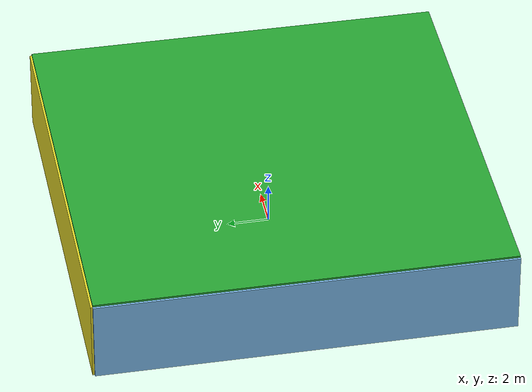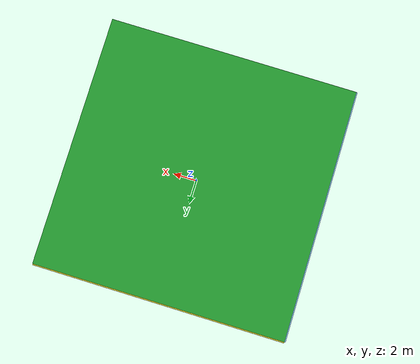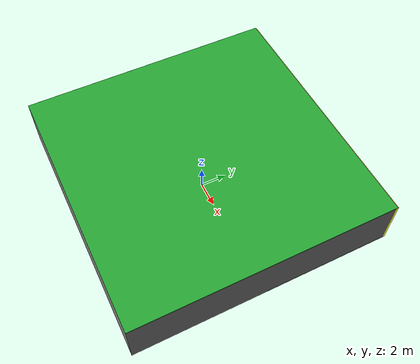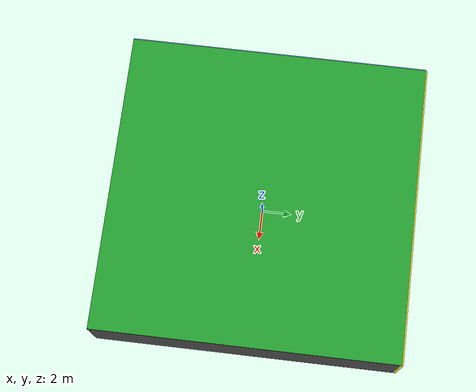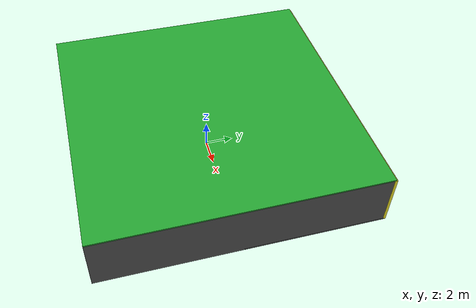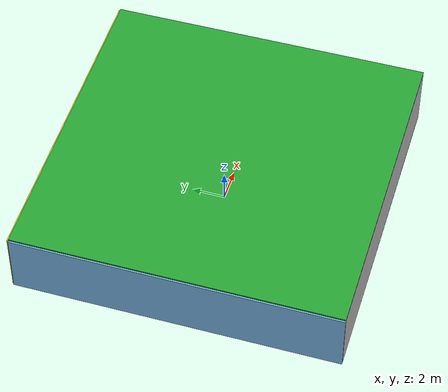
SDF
<sdf version="1.4">
 <world name="default">
  <physics type="ode">
   <max_step_size>0.001</max_step_size>
   <real_time_factor>1</real_time_factor>
   <real_time_update_rate>1000</real_time_update_rate>
   <gravity>0 0 -9.8</gravity>
  </physics>
  <scene><ambient>0.4 0.4 0.4 1</ambient><background>0.7 0.7 0.7 1</background><shadows>1</shadows></scene>
  <model name="Surrounding">
   <static>1</static>
   <link name="Ceiling">
    <collision name="Ceiling_Collision"><geometry><box><size>20 20 0.1</size></box></geometry></collision>
    <visual name="Ceiling_Visual">
     <geometry><box><size>20 20 0.1</size></box></geometry>
     <material>
      <script><uri>file://media/materials/scripts/gazebo.material</uri><name>Gazebo/GreenGlow</name></script>
     </material>
    </visual>
    <pose>0 0 4.05 0 0 0</pose>
   </link>
   <link name="Wall_South">
    <collision name="Wall_South_Collision">
     <geometry><box><size>20 0 4</size></box></geometry>
     <pose>0 0 2 0 -0 0</pose>
    </collision>
    <visual name="Wall_South_Visual">
     <pose>0 0 2 0 -0 0</pose>
     <geometry><box><size>20 0 4</size></box></geometry>
     <material>
      <script><uri>file://media/materials/scripts/gazebo.material</uri><name>Gazebo/JointAnchor</name></script>
     </material>
    </visual>
    <velocity_decay><linear>0</linear><angular>0</angular></velocity_decay>
    <pose>0 -10 0 0 -0 0</pose>
   </link>
   <link name="Wall_East">
    <collision name="Wall_21_Collision">
     <geometry><box><size>20 0 4</size></box></geometry>
     <pose>0 0 2 0 -0 0</pose>
    </collision>
    <visual name="Wall_21_Visual">
     <pose>0 0 2 0 -0 0</pose>
     <geometry><box><size>20 0 4</size></box></geometry>
     <material>
      <script><uri>file://media/materials/scripts/gazebo.material</uri><name>Gazebo/Road</name></script>
     </material>
    </visual>
    <velocity_decay><linear>0</linear><angular>0</angular></velocity_decay>
    <pose>10 0 0 0 -0 1.5708</pose>
   </link>
   <link name="Wall_North">
    <collision name="Wall_22_Collision">
     <geometry><box><size>20 0.2 4</size></box></geometry>
     <pose>0 0 2 0 -0 0</pose>
    </collision>
    <visual name="Wall_22_Visual">
     <pose>0 0 2 0 -0 0</pose>
     <geometry><box><size>20 0.2 4</size></box></geometry>
     <material>
      <script><uri>file://media/materials/scripts/gazebo.material</uri><name>Gazebo/YellowGlow</name></script>
     </material>
    </visual>
    <velocity_decay><linear>0</linear><angular>0</angular></velocity_decay>
    <pose>0 10 0 0 -0 0</pose>
   </link>
   <link name="Wall_West">
    <collision name="Wall_23_Collision">
     <geometry><box><size>20 0.2 4</size></box></geometry>
     <pose>0 0 2 0 -0 0</pose>
    </collision>
    <visual name="Wall_23_Visual">
     <pose>0 0 2 0 -0 0</pose>
     <geometry><box><size>20 0.2 4</size></box></geometry>
     <material>
      <script><uri>file://media/materials/scripts/gazebo.material</uri><name>Gazebo/SkyBlue</name></script>
     </material>
    </visual>
    <velocity_decay><linear>0</linear><angular>0</angular></velocity_decay>
    <pose>-10 0 0 0 0 -1.5708</pose>
   </link>
   <link name="Ground_link">
    <collision name="collision">
     <pose>0 0 .05 0 -0 0</pose>
     <geometry><box><size>20 20 0.1</size></box></geometry>
    </collision>
    <visual name="visual">
     <pose>0 0 .05 0 -0 0</pose>
     <geometry><box><size>20 20 0.1</size></box></geometry>
     <material>
      <script><uri>file://media/materials/scripts/gazebo.material</uri><name>Gazebo/Road</name></script>
     </material>
    </visual>
   </link>
   <static>1</static>
  </model>
  <spherical_coordinates>
   <surface_model>EARTH_WGS84</surface_model>
   <latitude_deg>0</latitude_deg>
   <longitude_deg>0</longitude_deg>
   <elevation>0</elevation>
   <heading_deg>0</heading_deg>
  </spherical_coordinates>
  <light name="lightball_0" type="diffuse">
   <diffuse>0.8 0.8 0.8 1</diffuse>
   <specular>0.2 0.2 0.2 1</specular>
   <attenuation>
    <range>100</range>
    <constant>0.7</constant>
    <linear>0.01</linear>
    <quadratic>0.001</quadratic>
   </attenuation>
   <direction>-0.5 0.1 -0.9</direction>
   <pose>2.71745012836 9.1141378548 2.3247852693 0 0 0</pose>
  </light>
  <light name="lightball_1" type="diffuse">
   <diffuse>0.8 0.8 0.8 1</diffuse>
   <specular>0.2 0.2 0.2 1</specular>
   <attenuation>
    <range>100</range>
    <constant>0.7</constant>
    <linear>0.01</linear>
    <quadratic>0.001</quadratic>
   </attenuation>
   <direction>-0.5 0.1 -0.9</direction>
   <pose>1.06343442476 -1.76101267854 3.85669585554 0 0 0</pose>
  </light>
  <light name="lightball_2" type="diffuse">
   <diffuse>0.8 0.8 0.8 1</diffuse>
   <specular>0.2 0.2 0.2 1</specular>
   <attenuation>
    <range>100</range>
    <constant>0.7</constant>
    <linear>0.01</linear>
    <quadratic>0.001</quadratic>
   </attenuation>
   <direction>-0.5 0.1 -0.9</direction>
   <pose>-0.261199575718 -1.89202296207 2.16768866184 0 0 0</pose>
  </light>
  <light name="lightball_3" type="diffuse">
   <diffuse>0.8 0.8 0.8 1</diffuse>
   <specular>0.2 0.2 0.2 1</specular>
   <attenuation>
    <range>100</range>
    <constant>0.7</constant>
    <linear>0.01</linear>
    <quadratic>0.001</quadratic>
   </attenuation>
   <direction>-0.5 0.1 -0.9</direction>
   <pose>-2.68223017197 -8.07329806806 1.45209156513 0 0 0</pose>
  </light>
  <include><uri>model://cabinet</uri><pose>-8.08450449438 -2.27333984467 0 0 0 0.250698434582</pose></include>
  <include>
   <uri>model://robocup_3Dsim_goal</uri>
   <pose>0.835345666108 -7.20220230418 0 0 0 2.08545160659</pose>
  </include>
  <include><uri>model://cabinet</uri><pose>5.17640808884 1.25277040362 0 0 0 0.20420721467</pose></include>
  <include>
   <uri>model://construction_cone</uri>
   <pose>7.46024093001 6.96488952354 0 0 0 0.0856802304134</pose>
  </include>
 </world>
</sdf>

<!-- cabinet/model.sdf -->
<sdf version="1.5">
  <model name="cabinet">
    <static>true</static>
    <link name="cabinet_bottom_plate">
      <inertial>
        <pose>0 0 -1 0 0 0</pose>
        <inertia>
          <ixx>2.050000</ixx>
          <ixy>0</ixy>
          <ixz>0</ixz>
          <iyy>2.050000</iyy>
          <iyz>0</iyz>
          <izz>2.050000</izz>
        </inertia>
        <mass>25.000000</mass>
      </inertial>
      <collision name="cabinet_bottom_plate_geom">
        <pose>0 0 0.010000 0 0 0</pose>
        <geometry>
          <box>
            <size>0.450000 0.450000 0.020000</size>
          </box>
        </geometry>
      </collision>
      <visual name="cabinet_bottom_plate_geom_visual">
        <pose>0 0 0.010000 0 0 0</pose>
        <geometry>
          <box>
            <size>0.450000 0.450000 0.020000</size>
          </box>
        </geometry>
        <material>
          <script>
            <uri>model://media/materials/scripts/gazebo.material</uri>
            <name>Gazebo/Wood</name>
          </script>
        </material>
      </visual>
      <collision name="cabinet_bottom_plate_geom_cabinet_back_plate">
        <pose>0.235000 0 0.510000 0 0 0</pose>
        <geometry>
          <box>
            <size>0.020000 0.450000 1.020000</size>
          </box>
        </geometry>
      </collision>
      <visual name="cabinet_bottom_plate_geom_cabinet_back_plate_visual">
        <pose>0.235000 0 0.510000 0 0 0</pose>
        <geometry>
          <box>
            <size>0.020000 0.450000 1.020000</size>
          </box>
        </geometry>
        <material>
          <script>
            <uri>model://media/materials/scripts/gazebo.material</uri>
            <name>Gazebo/Wood</name>
          </script>
        </material>
      </visual>
      <collision name="cabinet_bottom_plate_geom_cabinet_left_plate">
        <pose>0 0.235000 0.510000 0 0 0</pose>
        <geometry>
          <box>
            <size>0.450000 0.020000 1.020000</size>
          </box>
        </geometry>
      </collision>
      <visual name="cabinet_bottom_plate_geom_cabinet_left_plate_visual">
        <pose>0 0.235000 0.510000 0 0 0</pose>
        <geometry>
          <box>
            <size>0.450000 0.020000 1.020000</size>
          </box>
        </geometry>
        <material>
          <script>
            <uri>model://media/materials/scripts/gazebo.material</uri>
            <name>Gazebo/Wood</name>
          </script>
        </material>
      </visual>
      <collision name="cabinet_bottom_plate_geom_cabinet_middle_plate">
        <pose>0 0 0.510000 0 0 0</pose>
        <geometry>
          <box>
            <size>0.450000 0.450000 0.020000</size>
          </box>
        </geometry>
      </collision>
      <visual name="cabinet_bottom_plate_geom_cabinet_middle_plate_visual">
        <pose>0 0 0.510000 0 0 0</pose>
        <geometry>
          <box>
            <size>0.450000 0.450000 0.020000</size>
          </box>
        </geometry>
        <material>
          <script>
            <uri>model://media/materials/scripts/gazebo.material</uri>
            <name>Gazebo/Wood</name>
          </script>
        </material>
      </visual>
      <collision name="cabinet_bottom_plate_geom_cabinet_right_plate">
        <pose>0 -0.235000 0.510000 0 0 0</pose>
        <geometry>
          <box>
            <size>0.450000 0.020000 1.020000</size>
          </box>
        </geometry>
      </collision>
      <visual name="cabinet_bottom_plate_geom_cabinet_right_plate_visual">
        <pose>0 -0.235000 0.510000 0 0 0</pose>
        <geometry>
          <box>
            <size>0.450000 0.020000 1.020000</size>
          </box>
        </geometry>
        <material>
          <script>
            <uri>model://media/materials/scripts/gazebo.material</uri>
            <name>Gazebo/Wood</name>
          </script>
        </material>
      </visual>
      <collision name="cabinet_bottom_plate_geom_cabinet_top_plate">
        <pose>0 0 1.010000 0 0 0</pose>
        <geometry>
          <box>
            <size>0.450000 0.450000 0.020000</size>
          </box>
        </geometry>
      </collision>
      <visual name="cabinet_bottom_plate_geom_cabinet_top_plate_visual">
        <pose>0 0 1.010000 0 0 0</pose>
        <geometry>
          <box>
            <size>0.450000 0.450000 0.020000</size>
          </box>
        </geometry>
        <material>
          <script>
            <uri>model://media/materials/scripts/gazebo.material</uri>
            <name>Gazebo/Wood</name>
          </script>
        </material>
      </visual>
    </link>
  </model>
</sdf>

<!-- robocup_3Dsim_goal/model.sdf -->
<sdf version="1.5">
  <model name="robocup_3d_goal">
    <static>true</static>
    <link name="left_post">
      <pose>0 1.05 0.45 0 0 0</pose>
      <collision name="collision">
        <geometry>
          <cylinder>
            <radius>0.05</radius>
            <length>0.9</length>
          </cylinder>
        </geometry>
      </collision>
      <visual name="visual">
        <geometry>
          <cylinder>
            <radius>0.05</radius>
            <length>0.9</length>
          </cylinder>
        </geometry>
        <material>
          <script>
            <uri>file://media/materials/scripts/gazebo.material</uri>
            <name>Gazebo/ZincYellow</name>
          </script>
        </material>
      </visual>
    </link>
    <link name="left_support_horiz_lower">
      <pose>0.30 1.05 0.01 0 0 0</pose>
      <collision name="collision">
        <geometry>
          <box>
            <size>0.50 0.02 0.02</size>
          </box>
        </geometry>
      </collision>
      <visual name="visual">
        <geometry>
          <box>
            <size>0.50 0.02 0.02</size>
          </box>
        </geometry>
        <material>
          <script>
            <uri>file://media/materials/scripts/gazebo.material</uri>
            <name>Gazebo/White</name>
          </script>
        </material>
      </visual>
    </link>
    <link name="left_support_horiz_upper">
      <pose>0.30 1.05 0.79 0 0 0</pose>
      <collision name="collision">
        <geometry>
          <box>
            <size>0.50 0.02 0.02</size>
          </box>
        </geometry>
      </collision>
      <visual name="visual">
        <geometry>
          <box>
            <size>0.50 0.02 0.02</size>
          </box>
        </geometry>
        <material>
          <script>
            <uri>file://media/materials/scripts/gazebo.material</uri>
            <name>Gazebo/White</name>
          </script>
        </material>
      </visual>
    </link>
    <link name="left_support_vertical">
      <pose>0.56 1.05 0.4 0 1.5708 0</pose>
      <collision name="collision">
        <geometry>
          <box>
            <size>0.80 0.02 0.02</size>
          </box>
        </geometry>
      </collision>
      <visual name="visual">
        <geometry>
          <box>
            <size>0.80 0.02 0.02</size>
          </box>
        </geometry>
        <material>
          <script>
            <uri>file://media/materials/scripts/gazebo.material</uri>
            <name>Gazebo/White</name>
          </script>
        </material>
      </visual>
    </link>
    <link name="right_support_horiz_lower">
      <pose>0.30 -1.05 0.01 0 0 0</pose>
      <collision name="collision">
        <geometry>
          <box>
            <size>0.50 0.02 0.02</size>
          </box>
        </geometry>
      </collision>
      <visual name="visual">
        <geometry>
          <box>
            <size>0.50 0.02 0.02</size>
          </box>
        </geometry>
        <material>
          <script>
            <uri>file://media/materials/scripts/gazebo.material</uri>
            <name>Gazebo/White</name>
          </script>
        </material>
      </visual>
    </link>
    <link name="right_support_horiz_upper">
      <pose>0.30 -1.05 0.79 0 0 0</pose>
      <collision name="collision">
        <geometry>
          <box>
            <size>0.50 0.02 0.02</size>
          </box>
        </geometry>
      </collision>
      <visual name="visual">
        <geometry>
          <box>
            <size>0.50 0.02 0.02</size>
          </box>
        </geometry>
        <material>
          <script>
            <uri>file://media/materials/scripts/gazebo.material</uri>
            <name>Gazebo/White</name>
          </script>
        </material>
      </visual>
    </link>
    <link name="right_support_vertical">
      <pose>0.56 -1.05 0.4 0 1.5708 0</pose>
      <collision name="collision">
        <geometry>
          <box>
            <size>0.80 0.02 0.02</size>
          </box>
        </geometry>
      </collision>
      <visual name="visual">
        <geometry>
          <box>
            <size>0.80 0.02 0.02</size>
          </box>
        </geometry>
        <material>
          <script>
            <uri>file://media/materials/scripts/gazebo.material</uri>
            <name>Gazebo/White</name>
          </script>
        </material>
      </visual>
    </link>
    <link name="center_support_horiz_lower">
      <pose>0.56 0 0.01 0 1.5708 0</pose>
      <collision name="collision">
        <geometry>
          <box>
            <size>0.02 2.08 0.02</size>
          </box>
        </geometry>
      </collision>
      <visual name="visual">
        <geometry>
          <box>
            <size>0.02 2.08 0.02</size>
          </box>
        </geometry>
        <material>
          <script>
            <uri>file://media/materials/scripts/gazebo.material</uri>
            <name>Gazebo/White</name>
          </script>
        </material>
      </visual>
    </link>
    <link name="center_support_horiz_upper">
      <pose>0.56 0 0.79 0 1.5708 0</pose>
      <collision name="collision">
        <geometry>
          <box>
            <size>0.02 2.08 0.02</size>
          </box>
        </geometry>
      </collision>
      <visual name="visual">
        <geometry>
          <box>
            <size>0.02 2.08 0.02</size>
          </box>
        </geometry>
        <material>
          <script>
            <uri>file://media/materials/scripts/gazebo.material</uri>
            <name>Gazebo/White</name>
          </script>
        </material>
      </visual>
    </link>
    <link name="right_post">
      <pose>0 -1.05 0.45 0 0 0</pose>
      <collision name="collision">
        <geometry>
          <cylinder>
            <radius>0.05</radius>
            <length>0.9</length>
          </cylinder>
        </geometry>
      </collision>
      <visual name="visual">
        <geometry>
          <cylinder>
            <radius>0.05</radius>
            <length>0.9</length>
          </cylinder>
        </geometry>
        <material>
          <script>
            <uri>file://media/materials/scripts/gazebo.material</uri>
            <name>Gazebo/ZincYellow</name>
          </script>
        </material>
      </visual>
    </link>
    <link name="crossbar">
      <pose>0 0 0.85 1.57 1.57 0</pose>
      <collision name="collision">
        <geometry>
          <cylinder>
            <radius>0.05</radius>
            <length>2.0</length>
          </cylinder>
        </geometry>
      </collision>
      <visual name="visual">
        <geometry>
          <cylinder>
            <radius>0.05</radius>
            <length>2.0</length>
          </cylinder>
        </geometry>
        <material>
          <script>
            <uri>file://media/materials/scripts/gazebo.material</uri>
            <name>Gazebo/ZincYellow</name>
          </script>
        </material>
      </visual>
    </link>
    <link name="center_net">
      <pose>0.56 0 0.40 0 0 0</pose>
      <collision name="collision">
        <geometry>
          <box>
            <size>0.01 2.1 0.80</size>
          </box>
        </geometry>
      </collision>
      <visual name="visual">
        <geometry>
          <box>
            <size>0.01 2.1 0.80</size>
          </box>
        </geometry>
        <material>
          <script>
            <uri>model://../model_source/models/robocup09_spl_field/materials/scripts/</uri>
            <uri>model://../model_source/models/robocup09_spl_field/materials/textures/</uri>
            <name>RoboCup/Net</name>
          </script>
        </material>
      </visual>
    </link>
    <link name="left_net">
      <pose>0.30 1.05 0.40 0 0 0</pose>
      <collision name="collision">
        <geometry>
          <box>
            <size>0.50 0.01 0.76</size>
          </box>
        </geometry>
      </collision>
      <visual name="visual">
        <geometry>
          <box>
            <size>0.50 0.01 0.76</size>
          </box>
        </geometry>
        <material>
          <script>
            <uri>model://../model_source/models/robocup09_spl_field/materials/scripts/</uri>
            <uri>model://../model_source/models/robocup09_spl_field/materials/textures/</uri>
            <name>RoboCup/Net</name>
          </script>
        </material>
      </visual>
    </link>
    <link name="right_net">
      <pose>0.30 -1.05 0.40 0 0 0</pose>
      <collision name="collision">
        <geometry>
          <box>
            <size>0.50 0.01 0.76</size>
          </box>
        </geometry>
      </collision>
      <visual name="visual">
        <geometry>
          <box>
            <size>0.50 0.01 0.76</size>
          </box>
        </geometry>
        <material>
          <script>
            <uri>model://../model_source/models/robocup09_spl_field/materials/scripts/</uri>
            <uri>model://../model_source/models/robocup09_spl_field/materials/textures/</uri>
            <name>RoboCup/Net</name>
          </script>
        </material>
      </visual>
    </link>
  </model>
</sdf>

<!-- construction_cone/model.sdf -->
<sdf version="1.5">
  <model name="Construction Cone">
    <link name="link">
      <collision name="collision">
        <geometry>
          <mesh>
            <scale>10 10 10</scale>
            <uri>file://isr-testbed/construction_cone/meshes/construction_cone.dae</uri>
          </mesh>
        </geometry>
      </collision>
      <visual name="visual">
        <geometry>
          <mesh>
            <scale>10 10 10</scale>
            <uri>file://isr-testbed/construction_cone/meshes/construction_cone.dae</uri>
          </mesh>
        </geometry>
      </visual>
    </link>
  </model>
</sdf>
